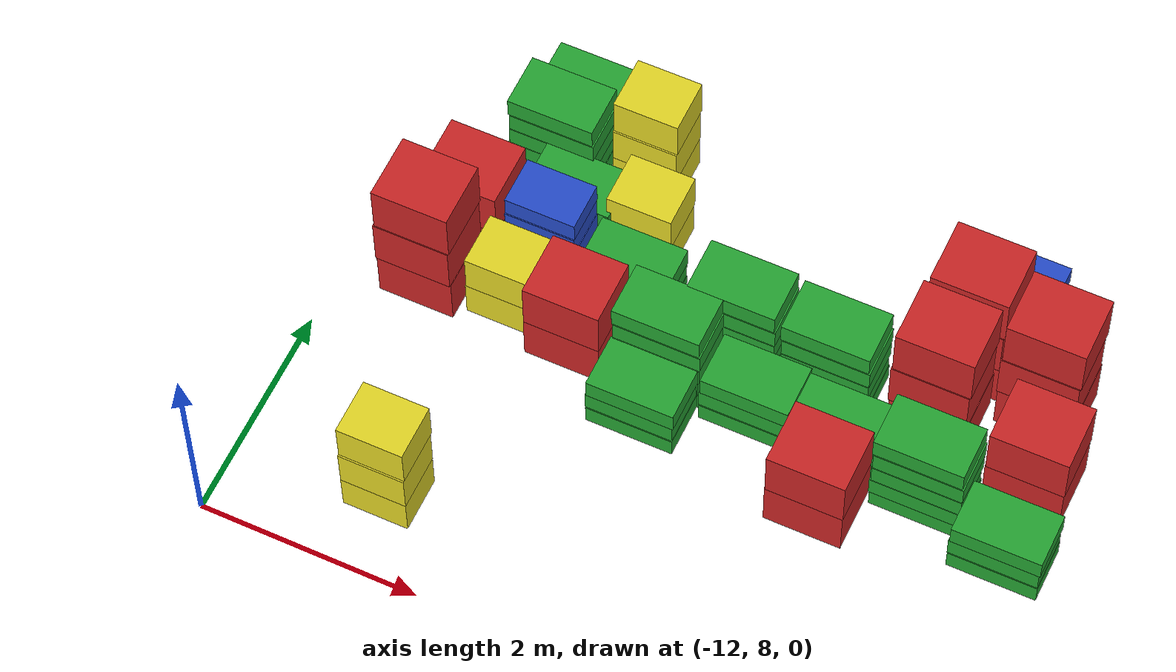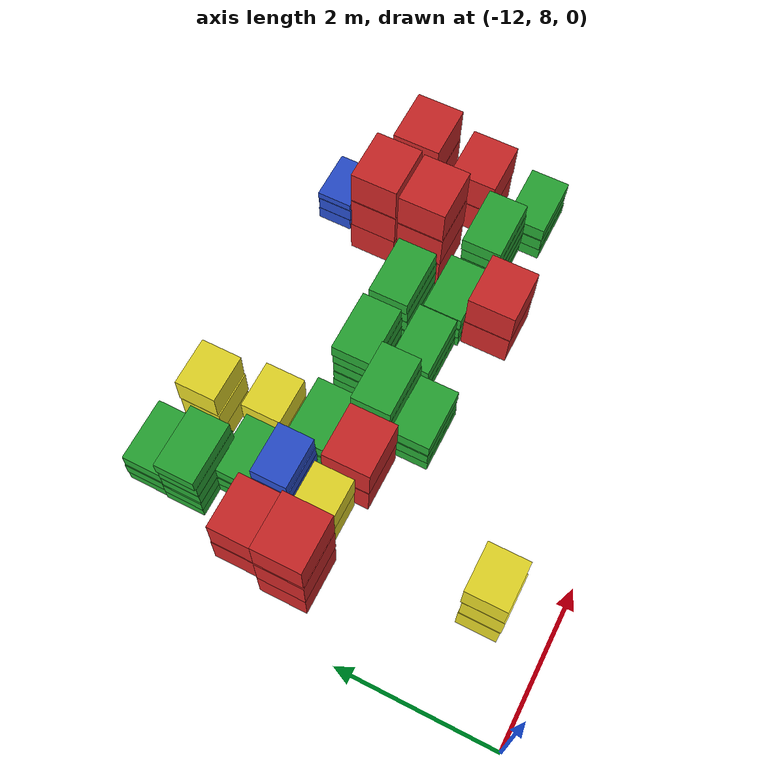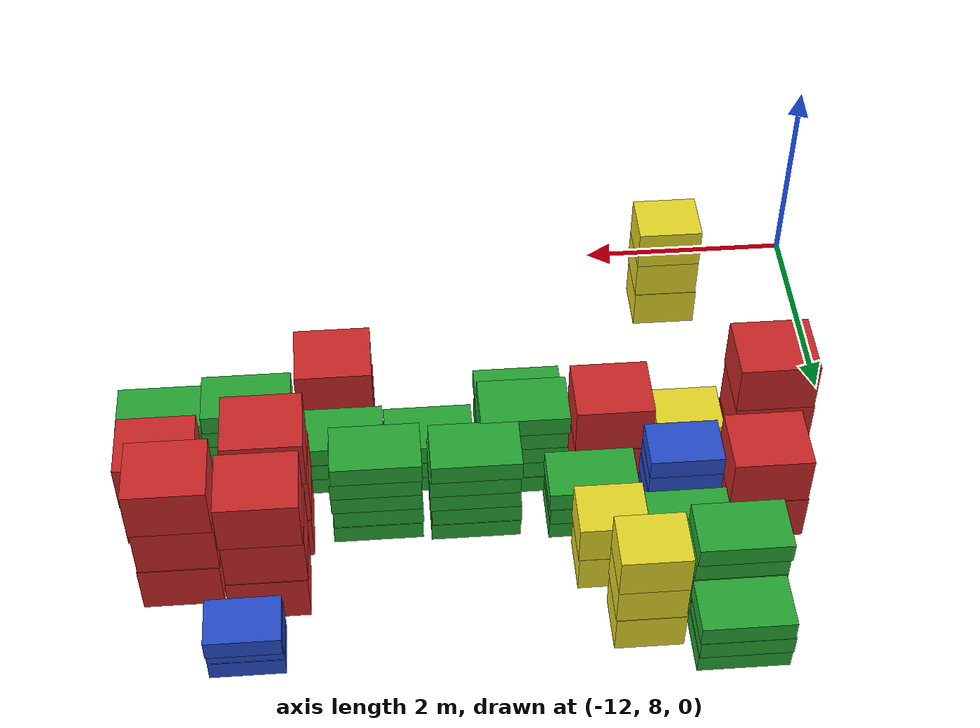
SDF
<sdf version="1.4">
 <model name="factory_baggage_group_B">
  <model name="baggage_C_x3_19">
   <model name="baggage_C_0">
    <static>1</static>
    <link name="link">
     <collision name="collision"><geometry><box><size>0.6 0.5 0.4</size></box></geometry></collision>
     <visual name="visual">
      <geometry><box><size>0.6 0.5 0.4</size></box></geometry>
      <material>
       <script><uri>file://media/materials/scripts/gazebo.material</uri><name>Gazebo/Yellow</name></script>
      </material>
     </visual>
    </link>
    <pose>0 0 0.2 0 -0 0</pose>
   </model>
   <model name="baggage_C_1">
    <static>1</static>
    <link name="link">
     <collision name="collision"><geometry><box><size>0.6 0.5 0.4</size></box></geometry></collision>
     <visual name="visual">
      <geometry><box><size>0.6 0.5 0.4</size></box></geometry>
      <material>
       <script><uri>file://media/materials/scripts/gazebo.material</uri><name>Gazebo/Yellow</name></script>
      </material>
     </visual>
    </link>
    <pose>0.0062 -0.0069 0.6 0 -0 0</pose>
   </model>
   <model name="baggage_C_2">
    <static>1</static>
    <link name="link">
     <collision name="collision"><geometry><box><size>0.6 0.5 0.4</size></box></geometry></collision>
     <visual name="visual">
      <geometry><box><size>0.6 0.5 0.4</size></box></geometry>
      <material>
       <script><uri>file://media/materials/scripts/gazebo.material</uri><name>Gazebo/Yellow</name></script>
      </material>
     </visual>
    </link>
    <pose>0.0089 0.0083 1 0 -0 0</pose>
   </model>
   <pose>-10.6422 8.77616 0 0 -0 0</pose>
  </model>
  <model name="baggage_A_x3_13">
   <model name="baggage_A_0">
    <static>1</static>
    <link name="link">
     <collision name="collision"><geometry><box><size>0.7 0.6 0.5</size></box></geometry></collision>
     <visual name="visual">
      <geometry><box><size>0.7 0.6 0.5</size></box></geometry>
      <material>
       <script><uri>file://media/materials/scripts/gazebo.material</uri><name>Gazebo/Red</name></script>
      </material>
     </visual>
    </link>
    <pose>0 0 0.25 0 -0 0</pose>
   </model>
   <model name="baggage_A_1">
    <static>1</static>
    <link name="link">
     <collision name="collision"><geometry><box><size>0.7 0.6 0.5</size></box></geometry></collision>
     <visual name="visual">
      <geometry><box><size>0.7 0.6 0.5</size></box></geometry>
      <material>
       <script><uri>file://media/materials/scripts/gazebo.material</uri><name>Gazebo/Red</name></script>
      </material>
     </visual>
    </link>
    <pose>-0.006 -0.0077 0.75 0 -0 0</pose>
   </model>
   <model name="baggage_A_2">
    <static>1</static>
    <link name="link">
     <collision name="collision"><geometry><box><size>0.7 0.6 0.5</size></box></geometry></collision>
     <visual name="visual">
      <geometry><box><size>0.7 0.6 0.5</size></box></geometry>
      <material>
       <script><uri>file://media/materials/scripts/gazebo.material</uri><name>Gazebo/Red</name></script>
      </material>
     </visual>
    </link>
    <pose>0.0045 0.0005 1.25 0 -0 0</pose>
   </model>
   <pose>-11.2629 10.8297 0 0 -0 0</pose>
  </model>
  <model name="baggage_A_x2_12">
   <model name="baggage_A_0">
    <static>1</static>
    <link name="link">
     <collision name="collision"><geometry><box><size>0.7 0.6 0.5</size></box></geometry></collision>
     <visual name="visual">
      <geometry><box><size>0.7 0.6 0.5</size></box></geometry>
      <material>
       <script><uri>file://media/materials/scripts/gazebo.material</uri><name>Gazebo/Red</name></script>
      </material>
     </visual>
    </link>
    <pose>0 0 0.25 0 -0 0</pose>
   </model>
   <model name="baggage_A_1">
    <static>1</static>
    <link name="link">
     <collision name="collision"><geometry><box><size>0.7 0.6 0.5</size></box></geometry></collision>
     <visual name="visual">
      <geometry><box><size>0.7 0.6 0.5</size></box></geometry>
      <material>
       <script><uri>file://media/materials/scripts/gazebo.material</uri><name>Gazebo/Red</name></script>
      </material>
     </visual>
    </link>
    <pose>0.0063 -0.0062 0.75 0 -0 0</pose>
   </model>
   <pose>-11.1491 11.4753 0 0 -0 0</pose>
  </model>
  <model name="baggage_C_x2_25">
   <model name="baggage_C_0">
    <static>1</static>
    <link name="link">
     <collision name="collision"><geometry><box><size>0.6 0.5 0.4</size></box></geometry></collision>
     <visual name="visual">
      <geometry><box><size>0.6 0.5 0.4</size></box></geometry>
      <material>
       <script><uri>file://media/materials/scripts/gazebo.material</uri><name>Gazebo/Yellow</name></script>
      </material>
     </visual>
    </link>
    <pose>0 0 0.2 0 -0 0</pose>
   </model>
   <model name="baggage_C_1">
    <static>1</static>
    <link name="link">
     <collision name="collision"><geometry><box><size>0.6 0.5 0.4</size></box></geometry></collision>
     <visual name="visual">
      <geometry><box><size>0.6 0.5 0.4</size></box></geometry>
      <material>
       <script><uri>file://media/materials/scripts/gazebo.material</uri><name>Gazebo/Yellow</name></script>
      </material>
     </visual>
    </link>
    <pose>0.0093 -0.002 0.6 0 -0 0</pose>
   </model>
   <pose>-10.5378 10.897 0 0 -0 0</pose>
  </model>
  <model name="baggage_B_x5_16">
   <model name="baggage_B_0">
    <static>1</static>
    <link name="link">
     <collision name="collision"><geometry><box><size>0.65 0.45 0.2</size></box></geometry></collision>
     <visual name="visual">
      <geometry><box><size>0.65 0.45 0.2</size></box></geometry>
      <material>
       <script><uri>file://media/materials/scripts/gazebo.material</uri><name>Gazebo/Blue</name></script>
      </material>
     </visual>
    </link>
    <pose>0 0 0.1 0 -0 0</pose>
   </model>
   <model name="baggage_B_1">
    <static>1</static>
    <link name="link">
     <collision name="collision"><geometry><box><size>0.65 0.45 0.2</size></box></geometry></collision>
     <visual name="visual">
      <geometry><box><size>0.65 0.45 0.2</size></box></geometry>
      <material>
       <script><uri>file://media/materials/scripts/gazebo.material</uri><name>Gazebo/Blue</name></script>
      </material>
     </visual>
    </link>
    <pose>-0.0014 -0.0091 0.3 0 -0 0</pose>
   </model>
   <model name="baggage_B_2">
    <static>1</static>
    <link name="link">
     <collision name="collision"><geometry><box><size>0.65 0.45 0.2</size></box></geometry></collision>
     <visual name="visual">
      <geometry><box><size>0.65 0.45 0.2</size></box></geometry>
      <material>
       <script><uri>file://media/materials/scripts/gazebo.material</uri><name>Gazebo/Blue</name></script>
      </material>
     </visual>
    </link>
    <pose>0.0076 -0.0066 0.5 0 -0 0</pose>
   </model>
   <model name="baggage_B_3">
    <static>1</static>
    <link name="link">
     <collision name="collision"><geometry><box><size>0.65 0.45 0.2</size></box></geometry></collision>
     <visual name="visual">
      <geometry><box><size>0.65 0.45 0.2</size></box></geometry>
      <material>
       <script><uri>file://media/materials/scripts/gazebo.material</uri><name>Gazebo/Blue</name></script>
      </material>
     </visual>
    </link>
    <pose>0 -0.0032 0.7 0 -0 0</pose>
   </model>
   <model name="baggage_B_4">
    <static>1</static>
    <link name="link">
     <collision name="collision"><geometry><box><size>0.65 0.45 0.2</size></box></geometry></collision>
     <visual name="visual">
      <geometry><box><size>0.65 0.45 0.2</size></box></geometry>
      <material>
       <script><uri>file://media/materials/scripts/gazebo.material</uri><name>Gazebo/Blue</name></script>
      </material>
     </visual>
    </link>
    <pose>0.0023 0.0073 0.9 0 -0 0</pose>
   </model>
   <pose>-10.4028 11.4394 0 0 -0 0</pose>
  </model>
  <model name="baggage_A_x2_13">
   <model name="baggage_A_0">
    <static>1</static>
    <link name="link">
     <collision name="collision"><geometry><box><size>0.7 0.6 0.5</size></box></geometry></collision>
     <visual name="visual">
      <geometry><box><size>0.7 0.6 0.5</size></box></geometry>
      <material>
       <script><uri>file://media/materials/scripts/gazebo.material</uri><name>Gazebo/Red</name></script>
      </material>
     </visual>
    </link>
    <pose>0 0 0.25 0 -0 0</pose>
   </model>
   <model name="baggage_A_1">
    <static>1</static>
    <link name="link">
     <collision name="collision"><geometry><box><size>0.7 0.6 0.5</size></box></geometry></collision>
     <visual name="visual">
      <geometry><box><size>0.7 0.6 0.5</size></box></geometry>
      <material>
       <script><uri>file://media/materials/scripts/gazebo.material</uri><name>Gazebo/Red</name></script>
      </material>
     </visual>
    </link>
    <pose>0.0063 -0.0062 0.75 0 -0 0</pose>
   </model>
   <pose>-9.85833 10.7808 0 0 -0 0</pose>
  </model>
  <model name="baggage_D_x3_10">
   <model name="baggage_D_0">
    <static>1</static>
    <link name="link">
     <collision name="collision"><geometry><box><size>0.8 0.5 0.2</size></box></geometry></collision>
     <visual name="visual">
      <geometry><box><size>0.8 0.5 0.2</size></box></geometry>
      <material>
       <script><uri>file://media/materials/scripts/gazebo.material</uri><name>Gazebo/Green</name></script>
      </material>
     </visual>
    </link>
    <pose>0 0 0.1 0 -0 0</pose>
   </model>
   <model name="baggage_D_1">
    <static>1</static>
    <link name="link">
     <collision name="collision"><geometry><box><size>0.8 0.5 0.2</size></box></geometry></collision>
     <visual name="visual">
      <geometry><box><size>0.8 0.5 0.2</size></box></geometry>
      <material>
       <script><uri>file://media/materials/scripts/gazebo.material</uri><name>Gazebo/Green</name></script>
      </material>
     </visual>
    </link>
    <pose>-0.0056 0.0083 0.3 0 -0 0</pose>
   </model>
   <model name="baggage_D_2">
    <static>1</static>
    <link name="link">
     <collision name="collision"><geometry><box><size>0.8 0.5 0.2</size></box></geometry></collision>
     <visual name="visual">
      <geometry><box><size>0.8 0.5 0.2</size></box></geometry>
      <material>
       <script><uri>file://media/materials/scripts/gazebo.material</uri><name>Gazebo/Green</name></script>
      </material>
     </visual>
    </link>
    <pose>0.0053 0.0057 0.5 0 -0 0</pose>
   </model>
   <pose>-9.61937 11.3897 0 0 -0 0</pose>
  </model>
  <model name="baggage_D_x5_10">
   <model name="baggage_D_0">
    <static>1</static>
    <link name="link">
     <collision name="collision"><geometry><box><size>0.8 0.5 0.2</size></box></geometry></collision>
     <visual name="visual">
      <geometry><box><size>0.8 0.5 0.2</size></box></geometry>
      <material>
       <script><uri>file://media/materials/scripts/gazebo.material</uri><name>Gazebo/Green</name></script>
      </material>
     </visual>
    </link>
    <pose>0 0 0.1 0 -0 0</pose>
   </model>
   <model name="baggage_D_1">
    <static>1</static>
    <link name="link">
     <collision name="collision"><geometry><box><size>0.8 0.5 0.2</size></box></geometry></collision>
     <visual name="visual">
      <geometry><box><size>0.8 0.5 0.2</size></box></geometry>
      <material>
       <script><uri>file://media/materials/scripts/gazebo.material</uri><name>Gazebo/Green</name></script>
      </material>
     </visual>
    </link>
    <pose>-0.0065 -0.0092 0.3 0 -0 0</pose>
   </model>
   <model name="baggage_D_2">
    <static>1</static>
    <link name="link">
     <collision name="collision"><geometry><box><size>0.8 0.5 0.2</size></box></geometry></collision>
     <visual name="visual">
      <geometry><box><size>0.8 0.5 0.2</size></box></geometry>
      <material>
       <script><uri>file://media/materials/scripts/gazebo.material</uri><name>Gazebo/Green</name></script>
      </material>
     </visual>
    </link>
    <pose>0.005 -0.0052 0.5 0 -0 0</pose>
   </model>
   <model name="baggage_D_3">
    <static>1</static>
    <link name="link">
     <collision name="collision"><geometry><box><size>0.8 0.5 0.2</size></box></geometry></collision>
     <visual name="visual">
      <geometry><box><size>0.8 0.5 0.2</size></box></geometry>
      <material>
       <script><uri>file://media/materials/scripts/gazebo.material</uri><name>Gazebo/Green</name></script>
      </material>
     </visual>
    </link>
    <pose>0.0074 0.0002 0.7 0 -0 0</pose>
   </model>
   <model name="baggage_D_4">
    <static>1</static>
    <link name="link">
     <collision name="collision"><geometry><box><size>0.8 0.5 0.2</size></box></geometry></collision>
     <visual name="visual">
      <geometry><box><size>0.8 0.5 0.2</size></box></geometry>
      <material>
       <script><uri>file://media/materials/scripts/gazebo.material</uri><name>Gazebo/Green</name></script>
      </material>
     </visual>
    </link>
    <pose>-0.006 0.0081 0.9 0 -0 0</pose>
   </model>
   <pose>-9.03759 10.8483 0 0 -0 0</pose>
  </model>
  <model name="baggage_D_x3_11">
   <model name="baggage_D_0">
    <static>1</static>
    <link name="link">
     <collision name="collision"><geometry><box><size>0.8 0.5 0.2</size></box></geometry></collision>
     <visual name="visual">
      <geometry><box><size>0.8 0.5 0.2</size></box></geometry>
      <material>
       <script><uri>file://media/materials/scripts/gazebo.material</uri><name>Gazebo/Green</name></script>
      </material>
     </visual>
    </link>
    <pose>0 0 0.1 0 -0 0</pose>
   </model>
   <model name="baggage_D_1">
    <static>1</static>
    <link name="link">
     <collision name="collision"><geometry><box><size>0.8 0.5 0.2</size></box></geometry></collision>
     <visual name="visual">
      <geometry><box><size>0.8 0.5 0.2</size></box></geometry>
      <material>
       <script><uri>file://media/materials/scripts/gazebo.material</uri><name>Gazebo/Green</name></script>
      </material>
     </visual>
    </link>
    <pose>-0.0056 0.0083 0.3 0 -0 0</pose>
   </model>
   <model name="baggage_D_2">
    <static>1</static>
    <link name="link">
     <collision name="collision"><geometry><box><size>0.8 0.5 0.2</size></box></geometry></collision>
     <visual name="visual">
      <geometry><box><size>0.8 0.5 0.2</size></box></geometry>
      <material>
       <script><uri>file://media/materials/scripts/gazebo.material</uri><name>Gazebo/Green</name></script>
      </material>
     </visual>
    </link>
    <pose>0.0053 0.0057 0.5 0 -0 0</pose>
   </model>
   <pose>-9.05099 10.3453 0 0 -0 0</pose>
  </model>
  <model name="baggage_D_x5_11">
   <model name="baggage_D_0">
    <static>1</static>
    <link name="link">
     <collision name="collision"><geometry><box><size>0.8 0.5 0.2</size></box></geometry></collision>
     <visual name="visual">
      <geometry><box><size>0.8 0.5 0.2</size></box></geometry>
      <material>
       <script><uri>file://media/materials/scripts/gazebo.material</uri><name>Gazebo/Green</name></script>
      </material>
     </visual>
    </link>
    <pose>0 0 0.1 0 -0 0</pose>
   </model>
   <model name="baggage_D_1">
    <static>1</static>
    <link name="link">
     <collision name="collision"><geometry><box><size>0.8 0.5 0.2</size></box></geometry></collision>
     <visual name="visual">
      <geometry><box><size>0.8 0.5 0.2</size></box></geometry>
      <material>
       <script><uri>file://media/materials/scripts/gazebo.material</uri><name>Gazebo/Green</name></script>
      </material>
     </visual>
    </link>
    <pose>-0.0065 -0.0092 0.3 0 -0 0</pose>
   </model>
   <model name="baggage_D_2">
    <static>1</static>
    <link name="link">
     <collision name="collision"><geometry><box><size>0.8 0.5 0.2</size></box></geometry></collision>
     <visual name="visual">
      <geometry><box><size>0.8 0.5 0.2</size></box></geometry>
      <material>
       <script><uri>file://media/materials/scripts/gazebo.material</uri><name>Gazebo/Green</name></script>
      </material>
     </visual>
    </link>
    <pose>0.005 -0.0052 0.5 0 -0 0</pose>
   </model>
   <model name="baggage_D_3">
    <static>1</static>
    <link name="link">
     <collision name="collision"><geometry><box><size>0.8 0.5 0.2</size></box></geometry></collision>
     <visual name="visual">
      <geometry><box><size>0.8 0.5 0.2</size></box></geometry>
      <material>
       <script><uri>file://media/materials/scripts/gazebo.material</uri><name>Gazebo/Green</name></script>
      </material>
     </visual>
    </link>
    <pose>0.0074 0.0002 0.7 0 -0 0</pose>
   </model>
   <model name="baggage_D_4">
    <static>1</static>
    <link name="link">
     <collision name="collision"><geometry><box><size>0.8 0.5 0.2</size></box></geometry></collision>
     <visual name="visual">
      <geometry><box><size>0.8 0.5 0.2</size></box></geometry>
      <material>
       <script><uri>file://media/materials/scripts/gazebo.material</uri><name>Gazebo/Green</name></script>
      </material>
     </visual>
    </link>
    <pose>-0.006 0.0081 0.9 0 -0 0</pose>
   </model>
   <pose>-8.56957 11.334 0 0 -0 0</pose>
  </model>
  <model name="baggage_D_x5_12">
   <model name="baggage_D_0">
    <static>1</static>
    <link name="link">
     <collision name="collision"><geometry><box><size>0.8 0.5 0.2</size></box></geometry></collision>
     <visual name="visual">
      <geometry><box><size>0.8 0.5 0.2</size></box></geometry>
      <material>
       <script><uri>file://media/materials/scripts/gazebo.material</uri><name>Gazebo/Green</name></script>
      </material>
     </visual>
    </link>
    <pose>0 0 0.1 0 -0 0</pose>
   </model>
   <model name="baggage_D_1">
    <static>1</static>
    <link name="link">
     <collision name="collision"><geometry><box><size>0.8 0.5 0.2</size></box></geometry></collision>
     <visual name="visual">
      <geometry><box><size>0.8 0.5 0.2</size></box></geometry>
      <material>
       <script><uri>file://media/materials/scripts/gazebo.material</uri><name>Gazebo/Green</name></script>
      </material>
     </visual>
    </link>
    <pose>-0.0065 -0.0092 0.3 0 -0 0</pose>
   </model>
   <model name="baggage_D_2">
    <static>1</static>
    <link name="link">
     <collision name="collision"><geometry><box><size>0.8 0.5 0.2</size></box></geometry></collision>
     <visual name="visual">
      <geometry><box><size>0.8 0.5 0.2</size></box></geometry>
      <material>
       <script><uri>file://media/materials/scripts/gazebo.material</uri><name>Gazebo/Green</name></script>
      </material>
     </visual>
    </link>
    <pose>0.005 -0.0052 0.5 0 -0 0</pose>
   </model>
   <model name="baggage_D_3">
    <static>1</static>
    <link name="link">
     <collision name="collision"><geometry><box><size>0.8 0.5 0.2</size></box></geometry></collision>
     <visual name="visual">
      <geometry><box><size>0.8 0.5 0.2</size></box></geometry>
      <material>
       <script><uri>file://media/materials/scripts/gazebo.material</uri><name>Gazebo/Green</name></script>
      </material>
     </visual>
    </link>
    <pose>0.0074 0.0002 0.7 0 -0 0</pose>
   </model>
   <model name="baggage_D_4">
    <static>1</static>
    <link name="link">
     <collision name="collision"><geometry><box><size>0.8 0.5 0.2</size></box></geometry></collision>
     <visual name="visual">
      <geometry><box><size>0.8 0.5 0.2</size></box></geometry>
      <material>
       <script><uri>file://media/materials/scripts/gazebo.material</uri><name>Gazebo/Green</name></script>
      </material>
     </visual>
    </link>
    <pose>-0.006 0.0081 0.9 0 -0 0</pose>
   </model>
   <pose>-7.69601 11.2985 0 0 -0 0</pose>
  </model>
  <model name="baggage_D_x3_12">
   <model name="baggage_D_0">
    <static>1</static>
    <link name="link">
     <collision name="collision"><geometry><box><size>0.8 0.5 0.2</size></box></geometry></collision>
     <visual name="visual">
      <geometry><box><size>0.8 0.5 0.2</size></box></geometry>
      <material>
       <script><uri>file://media/materials/scripts/gazebo.material</uri><name>Gazebo/Green</name></script>
      </material>
     </visual>
    </link>
    <pose>0 0 0.1 0 -0 0</pose>
   </model>
   <model name="baggage_D_1">
    <static>1</static>
    <link name="link">
     <collision name="collision"><geometry><box><size>0.8 0.5 0.2</size></box></geometry></collision>
     <visual name="visual">
      <geometry><box><size>0.8 0.5 0.2</size></box></geometry>
      <material>
       <script><uri>file://media/materials/scripts/gazebo.material</uri><name>Gazebo/Green</name></script>
      </material>
     </visual>
    </link>
    <pose>-0.0056 0.0083 0.3 0 -0 0</pose>
   </model>
   <model name="baggage_D_2">
    <static>1</static>
    <link name="link">
     <collision name="collision"><geometry><box><size>0.8 0.5 0.2</size></box></geometry></collision>
     <visual name="visual">
      <geometry><box><size>0.8 0.5 0.2</size></box></geometry>
      <material>
       <script><uri>file://media/materials/scripts/gazebo.material</uri><name>Gazebo/Green</name></script>
      </material>
     </visual>
    </link>
    <pose>0.0053 0.0057 0.5 0 -0 0</pose>
   </model>
   <pose>-8.19713 10.7661 0 0 -0 0</pose>
  </model>
  <model name="baggage_D_x3_13">
   <model name="baggage_D_0">
    <static>1</static>
    <link name="link">
     <collision name="collision"><geometry><box><size>0.8 0.5 0.2</size></box></geometry></collision>
     <visual name="visual">
      <geometry><box><size>0.8 0.5 0.2</size></box></geometry>
      <material>
       <script><uri>file://media/materials/scripts/gazebo.material</uri><name>Gazebo/Green</name></script>
      </material>
     </visual>
    </link>
    <pose>0 0 0.1 0 -0 0</pose>
   </model>
   <model name="baggage_D_1">
    <static>1</static>
    <link name="link">
     <collision name="collision"><geometry><box><size>0.8 0.5 0.2</size></box></geometry></collision>
     <visual name="visual">
      <geometry><box><size>0.8 0.5 0.2</size></box></geometry>
      <material>
       <script><uri>file://media/materials/scripts/gazebo.material</uri><name>Gazebo/Green</name></script>
      </material>
     </visual>
    </link>
    <pose>-0.0056 0.0083 0.3 0 -0 0</pose>
   </model>
   <model name="baggage_D_2">
    <static>1</static>
    <link name="link">
     <collision name="collision"><geometry><box><size>0.8 0.5 0.2</size></box></geometry></collision>
     <visual name="visual">
      <geometry><box><size>0.8 0.5 0.2</size></box></geometry>
      <material>
       <script><uri>file://media/materials/scripts/gazebo.material</uri><name>Gazebo/Green</name></script>
      </material>
     </visual>
    </link>
    <pose>0.0053 0.0057 0.5 0 -0 0</pose>
   </model>
   <pose>-7.38778 10.7233 0 0 -0 0</pose>
  </model>
  <model name="baggage_D_x5_13">
   <model name="baggage_D_0">
    <static>1</static>
    <link name="link">
     <collision name="collision"><geometry><box><size>0.8 0.5 0.2</size></box></geometry></collision>
     <visual name="visual">
      <geometry><box><size>0.8 0.5 0.2</size></box></geometry>
      <material>
       <script><uri>file://media/materials/scripts/gazebo.material</uri><name>Gazebo/Green</name></script>
      </material>
     </visual>
    </link>
    <pose>0 0 0.1 0 -0 0</pose>
   </model>
   <model name="baggage_D_1">
    <static>1</static>
    <link name="link">
     <collision name="collision"><geometry><box><size>0.8 0.5 0.2</size></box></geometry></collision>
     <visual name="visual">
      <geometry><box><size>0.8 0.5 0.2</size></box></geometry>
      <material>
       <script><uri>file://media/materials/scripts/gazebo.material</uri><name>Gazebo/Green</name></script>
      </material>
     </visual>
    </link>
    <pose>-0.0065 -0.0092 0.3 0 -0 0</pose>
   </model>
   <model name="baggage_D_2">
    <static>1</static>
    <link name="link">
     <collision name="collision"><geometry><box><size>0.8 0.5 0.2</size></box></geometry></collision>
     <visual name="visual">
      <geometry><box><size>0.8 0.5 0.2</size></box></geometry>
      <material>
       <script><uri>file://media/materials/scripts/gazebo.material</uri><name>Gazebo/Green</name></script>
      </material>
     </visual>
    </link>
    <pose>0.005 -0.0052 0.5 0 -0 0</pose>
   </model>
   <model name="baggage_D_3">
    <static>1</static>
    <link name="link">
     <collision name="collision"><geometry><box><size>0.8 0.5 0.2</size></box></geometry></collision>
     <visual name="visual">
      <geometry><box><size>0.8 0.5 0.2</size></box></geometry>
      <material>
       <script><uri>file://media/materials/scripts/gazebo.material</uri><name>Gazebo/Green</name></script>
      </material>
     </visual>
    </link>
    <pose>0.0074 0.0002 0.7 0 -0 0</pose>
   </model>
   <model name="baggage_D_4">
    <static>1</static>
    <link name="link">
     <collision name="collision"><geometry><box><size>0.8 0.5 0.2</size></box></geometry></collision>
     <visual name="visual">
      <geometry><box><size>0.8 0.5 0.2</size></box></geometry>
      <material>
       <script><uri>file://media/materials/scripts/gazebo.material</uri><name>Gazebo/Green</name></script>
      </material>
     </visual>
    </link>
    <pose>-0.006 0.0081 0.9 0 -0 0</pose>
   </model>
   <pose>-6.57089 10.6133 0 0 -0 0</pose>
  </model>
  <model name="baggage_A_x2_14">
   <model name="baggage_A_0">
    <static>1</static>
    <link name="link">
     <collision name="collision"><geometry><box><size>0.7 0.6 0.5</size></box></geometry></collision>
     <visual name="visual">
      <geometry><box><size>0.7 0.6 0.5</size></box></geometry>
      <material>
       <script><uri>file://media/materials/scripts/gazebo.material</uri><name>Gazebo/Red</name></script>
      </material>
     </visual>
    </link>
    <pose>0 0 0.25 0 -0 0</pose>
   </model>
   <model name="baggage_A_1">
    <static>1</static>
    <link name="link">
     <collision name="collision"><geometry><box><size>0.7 0.6 0.5</size></box></geometry></collision>
     <visual name="visual">
      <geometry><box><size>0.7 0.6 0.5</size></box></geometry>
      <material>
       <script><uri>file://media/materials/scripts/gazebo.material</uri><name>Gazebo/Red</name></script>
      </material>
     </visual>
    </link>
    <pose>0.0063 -0.0062 0.75 0 -0 0</pose>
   </model>
   <pose>-7.36037 10.1652 0 0 -0 0</pose>
  </model>
  <model name="baggage_D_x3_14">
   <model name="baggage_D_0">
    <static>1</static>
    <link name="link">
     <collision name="collision"><geometry><box><size>0.8 0.5 0.2</size></box></geometry></collision>
     <visual name="visual">
      <geometry><box><size>0.8 0.5 0.2</size></box></geometry>
      <material>
       <script><uri>file://media/materials/scripts/gazebo.material</uri><name>Gazebo/Green</name></script>
      </material>
     </visual>
    </link>
    <pose>0 0 0.1 0 -0 0</pose>
   </model>
   <model name="baggage_D_1">
    <static>1</static>
    <link name="link">
     <collision name="collision"><geometry><box><size>0.8 0.5 0.2</size></box></geometry></collision>
     <visual name="visual">
      <geometry><box><size>0.8 0.5 0.2</size></box></geometry>
      <material>
       <script><uri>file://media/materials/scripts/gazebo.material</uri><name>Gazebo/Green</name></script>
      </material>
     </visual>
    </link>
    <pose>-0.0056 0.0083 0.3 0 -0 0</pose>
   </model>
   <model name="baggage_D_2">
    <static>1</static>
    <link name="link">
     <collision name="collision"><geometry><box><size>0.8 0.5 0.2</size></box></geometry></collision>
     <visual name="visual">
      <geometry><box><size>0.8 0.5 0.2</size></box></geometry>
      <material>
       <script><uri>file://media/materials/scripts/gazebo.material</uri><name>Gazebo/Green</name></script>
      </material>
     </visual>
    </link>
    <pose>0.0053 0.0057 0.5 0 -0 0</pose>
   </model>
   <pose>-5.75961 10.3463 0 0 -0 0</pose>
  </model>
  <model name="baggage_D_x3_38">
   <model name="baggage_D_0">
    <static>1</static>
    <link name="link">
     <collision name="collision"><geometry><box><size>0.8 0.5 0.2</size></box></geometry></collision>
     <visual name="visual">
      <geometry><box><size>0.8 0.5 0.2</size></box></geometry>
      <material>
       <script><uri>file://media/materials/scripts/gazebo.material</uri><name>Gazebo/Green</name></script>
      </material>
     </visual>
    </link>
    <pose>0 0 0.1 0 -0 0</pose>
   </model>
   <model name="baggage_D_1">
    <static>1</static>
    <link name="link">
     <collision name="collision"><geometry><box><size>0.8 0.5 0.2</size></box></geometry></collision>
     <visual name="visual">
      <geometry><box><size>0.8 0.5 0.2</size></box></geometry>
      <material>
       <script><uri>file://media/materials/scripts/gazebo.material</uri><name>Gazebo/Green</name></script>
      </material>
     </visual>
    </link>
    <pose>-0.0056 0.0083 0.3 0 -0 0</pose>
   </model>
   <model name="baggage_D_2">
    <static>1</static>
    <link name="link">
     <collision name="collision"><geometry><box><size>0.8 0.5 0.2</size></box></geometry></collision>
     <visual name="visual">
      <geometry><box><size>0.8 0.5 0.2</size></box></geometry>
      <material>
       <script><uri>file://media/materials/scripts/gazebo.material</uri><name>Gazebo/Green</name></script>
      </material>
     </visual>
    </link>
    <pose>0.0053 0.0057 0.5 0 -0 0</pose>
   </model>
   <pose>-10.7241 12.8847 0 0 -0 0</pose>
  </model>
  <model name="baggage_D_x5_19">
   <model name="baggage_D_0">
    <static>1</static>
    <link name="link">
     <collision name="collision"><geometry><box><size>0.8 0.5 0.2</size></box></geometry></collision>
     <visual name="visual">
      <geometry><box><size>0.8 0.5 0.2</size></box></geometry>
      <material>
       <script><uri>file://media/materials/scripts/gazebo.material</uri><name>Gazebo/Green</name></script>
      </material>
     </visual>
    </link>
    <pose>0 0 0.1 0 -0 0</pose>
   </model>
   <model name="baggage_D_1">
    <static>1</static>
    <link name="link">
     <collision name="collision"><geometry><box><size>0.8 0.5 0.2</size></box></geometry></collision>
     <visual name="visual">
      <geometry><box><size>0.8 0.5 0.2</size></box></geometry>
      <material>
       <script><uri>file://media/materials/scripts/gazebo.material</uri><name>Gazebo/Green</name></script>
      </material>
     </visual>
    </link>
    <pose>-0.0065 -0.0092 0.3 0 -0 0</pose>
   </model>
   <model name="baggage_D_2">
    <static>1</static>
    <link name="link">
     <collision name="collision"><geometry><box><size>0.8 0.5 0.2</size></box></geometry></collision>
     <visual name="visual">
      <geometry><box><size>0.8 0.5 0.2</size></box></geometry>
      <material>
       <script><uri>file://media/materials/scripts/gazebo.material</uri><name>Gazebo/Green</name></script>
      </material>
     </visual>
    </link>
    <pose>0.005 -0.0052 0.5 0 -0 0</pose>
   </model>
   <model name="baggage_D_3">
    <static>1</static>
    <link name="link">
     <collision name="collision"><geometry><box><size>0.8 0.5 0.2</size></box></geometry></collision>
     <visual name="visual">
      <geometry><box><size>0.8 0.5 0.2</size></box></geometry>
      <material>
       <script><uri>file://media/materials/scripts/gazebo.material</uri><name>Gazebo/Green</name></script>
      </material>
     </visual>
    </link>
    <pose>0.0074 0.0002 0.7 0 -0 0</pose>
   </model>
   <model name="baggage_D_4">
    <static>1</static>
    <link name="link">
     <collision name="collision"><geometry><box><size>0.8 0.5 0.2</size></box></geometry></collision>
     <visual name="visual">
      <geometry><box><size>0.8 0.5 0.2</size></box></geometry>
      <material>
       <script><uri>file://media/materials/scripts/gazebo.material</uri><name>Gazebo/Green</name></script>
      </material>
     </visual>
    </link>
    <pose>-0.006 0.0081 0.9 0 -0 0</pose>
   </model>
   <pose>-10.739 12.3817 0 0 -0 0</pose>
  </model>
  <model name="baggage_D_x3_39">
   <model name="baggage_D_0">
    <static>1</static>
    <link name="link">
     <collision name="collision"><geometry><box><size>0.8 0.5 0.2</size></box></geometry></collision>
     <visual name="visual">
      <geometry><box><size>0.8 0.5 0.2</size></box></geometry>
      <material>
       <script><uri>file://media/materials/scripts/gazebo.material</uri><name>Gazebo/Green</name></script>
      </material>
     </visual>
    </link>
    <pose>0 0 0.1 0 -0 0</pose>
   </model>
   <model name="baggage_D_1">
    <static>1</static>
    <link name="link">
     <collision name="collision"><geometry><box><size>0.8 0.5 0.2</size></box></geometry></collision>
     <visual name="visual">
      <geometry><box><size>0.8 0.5 0.2</size></box></geometry>
      <material>
       <script><uri>file://media/materials/scripts/gazebo.material</uri><name>Gazebo/Green</name></script>
      </material>
     </visual>
    </link>
    <pose>-0.0056 0.0083 0.3 0 -0 0</pose>
   </model>
   <model name="baggage_D_2">
    <static>1</static>
    <link name="link">
     <collision name="collision"><geometry><box><size>0.8 0.5 0.2</size></box></geometry></collision>
     <visual name="visual">
      <geometry><box><size>0.8 0.5 0.2</size></box></geometry>
      <material>
       <script><uri>file://media/materials/scripts/gazebo.material</uri><name>Gazebo/Green</name></script>
      </material>
     </visual>
    </link>
    <pose>0.0053 0.0057 0.5 0 -0 0</pose>
   </model>
   <pose>-10.3756 11.902 0 0 -0 0</pose>
  </model>
  <model name="baggage_A_x2_32">
   <model name="baggage_A_0">
    <static>1</static>
    <link name="link">
     <collision name="collision"><geometry><box><size>0.7 0.6 0.5</size></box></geometry></collision>
     <visual name="visual">
      <geometry><box><size>0.7 0.6 0.5</size></box></geometry>
      <material>
       <script><uri>file://media/materials/scripts/gazebo.material</uri><name>Gazebo/Red</name></script>
      </material>
     </visual>
    </link>
    <pose>0 0 0.25 0 -0 0</pose>
   </model>
   <model name="baggage_A_1">
    <static>1</static>
    <link name="link">
     <collision name="collision"><geometry><box><size>0.7 0.6 0.5</size></box></geometry></collision>
     <visual name="visual">
      <geometry><box><size>0.7 0.6 0.5</size></box></geometry>
      <material>
       <script><uri>file://media/materials/scripts/gazebo.material</uri><name>Gazebo/Red</name></script>
      </material>
     </visual>
    </link>
    <pose>0.0063 -0.0062 0.75 0 -0 0</pose>
   </model>
   <pose>-5.79576 11.126 0 0 -0 0</pose>
  </model>
  <model name="baggage_A_x3_29">
   <model name="baggage_A_0">
    <static>1</static>
    <link name="link">
     <collision name="collision"><geometry><box><size>0.7 0.6 0.5</size></box></geometry></collision>
     <visual name="visual">
      <geometry><box><size>0.7 0.6 0.5</size></box></geometry>
      <material>
       <script><uri>file://media/materials/scripts/gazebo.material</uri><name>Gazebo/Red</name></script>
      </material>
     </visual>
    </link>
    <pose>0 0 0.25 0 -0 0</pose>
   </model>
   <model name="baggage_A_1">
    <static>1</static>
    <link name="link">
     <collision name="collision"><geometry><box><size>0.7 0.6 0.5</size></box></geometry></collision>
     <visual name="visual">
      <geometry><box><size>0.7 0.6 0.5</size></box></geometry>
      <material>
       <script><uri>file://media/materials/scripts/gazebo.material</uri><name>Gazebo/Red</name></script>
      </material>
     </visual>
    </link>
    <pose>-0.006 -0.0077 0.75 0 -0 0</pose>
   </model>
   <model name="baggage_A_2">
    <static>1</static>
    <link name="link">
     <collision name="collision"><geometry><box><size>0.7 0.6 0.5</size></box></geometry></collision>
     <visual name="visual">
      <geometry><box><size>0.7 0.6 0.5</size></box></geometry>
      <material>
       <script><uri>file://media/materials/scripts/gazebo.material</uri><name>Gazebo/Red</name></script>
      </material>
     </visual>
    </link>
    <pose>0.0045 0.0005 1.25 0 -0 0</pose>
   </model>
   <pose>-6.76523 11.3758 0 0 -0 0</pose>
  </model>
  <model name="baggage_A_x3_30">
   <model name="baggage_A_0">
    <static>1</static>
    <link name="link">
     <collision name="collision"><geometry><box><size>0.7 0.6 0.5</size></box></geometry></collision>
     <visual name="visual">
      <geometry><box><size>0.7 0.6 0.5</size></box></geometry>
      <material>
       <script><uri>file://media/materials/scripts/gazebo.material</uri><name>Gazebo/Red</name></script>
      </material>
     </visual>
    </link>
    <pose>0 0 0.25 0 -0 0</pose>
   </model>
   <model name="baggage_A_1">
    <static>1</static>
    <link name="link">
     <collision name="collision"><geometry><box><size>0.7 0.6 0.5</size></box></geometry></collision>
     <visual name="visual">
      <geometry><box><size>0.7 0.6 0.5</size></box></geometry>
      <material>
       <script><uri>file://media/materials/scripts/gazebo.material</uri><name>Gazebo/Red</name></script>
      </material>
     </visual>
    </link>
    <pose>-0.006 -0.0077 0.75 0 -0 0</pose>
   </model>
   <model name="baggage_A_2">
    <static>1</static>
    <link name="link">
     <collision name="collision"><geometry><box><size>0.7 0.6 0.5</size></box></geometry></collision>
     <visual name="visual">
      <geometry><box><size>0.7 0.6 0.5</size></box></geometry>
      <material>
       <script><uri>file://media/materials/scripts/gazebo.material</uri><name>Gazebo/Red</name></script>
      </material>
     </visual>
    </link>
    <pose>0.0045 0.0005 1.25 0 -0 0</pose>
   </model>
   <pose>-5.97688 11.8333 0 0 -0 0</pose>
  </model>
  <model name="baggage_A_x3_31">
   <model name="baggage_A_0">
    <static>1</static>
    <link name="link">
     <collision name="collision"><geometry><box><size>0.7 0.6 0.5</size></box></geometry></collision>
     <visual name="visual">
      <geometry><box><size>0.7 0.6 0.5</size></box></geometry>
      <material>
       <script><uri>file://media/materials/scripts/gazebo.material</uri><name>Gazebo/Red</name></script>
      </material>
     </visual>
    </link>
    <pose>0 0 0.25 0 -0 0</pose>
   </model>
   <model name="baggage_A_1">
    <static>1</static>
    <link name="link">
     <collision name="collision"><geometry><box><size>0.7 0.6 0.5</size></box></geometry></collision>
     <visual name="visual">
      <geometry><box><size>0.7 0.6 0.5</size></box></geometry>
      <material>
       <script><uri>file://media/materials/scripts/gazebo.material</uri><name>Gazebo/Red</name></script>
      </material>
     </visual>
    </link>
    <pose>-0.006 -0.0077 0.75 0 -0 0</pose>
   </model>
   <model name="baggage_A_2">
    <static>1</static>
    <link name="link">
     <collision name="collision"><geometry><box><size>0.7 0.6 0.5</size></box></geometry></collision>
     <visual name="visual">
      <geometry><box><size>0.7 0.6 0.5</size></box></geometry>
      <material>
       <script><uri>file://media/materials/scripts/gazebo.material</uri><name>Gazebo/Red</name></script>
      </material>
     </visual>
    </link>
    <pose>0.0045 0.0005 1.25 0 -0 0</pose>
   </model>
   <pose>-6.72921 12.0202 0 0 -0 0</pose>
  </model>
  <model name="baggage_B_x3_34">
   <model name="baggage_B_0">
    <static>1</static>
    <link name="link">
     <collision name="collision"><geometry><box><size>0.65 0.45 0.2</size></box></geometry></collision>
     <visual name="visual">
      <geometry><box><size>0.65 0.45 0.2</size></box></geometry>
      <material>
       <script><uri>file://media/materials/scripts/gazebo.material</uri><name>Gazebo/Blue</name></script>
      </material>
     </visual>
    </link>
    <pose>0 0 0.1 0 -0 0</pose>
   </model>
   <model name="baggage_B_1">
    <static>1</static>
    <link name="link">
     <collision name="collision"><geometry><box><size>0.65 0.45 0.2</size></box></geometry></collision>
     <visual name="visual">
      <geometry><box><size>0.65 0.45 0.2</size></box></geometry>
      <material>
       <script><uri>file://media/materials/scripts/gazebo.material</uri><name>Gazebo/Blue</name></script>
      </material>
     </visual>
    </link>
    <pose>0.0028 -0.0086 0.3 0 -0 0</pose>
   </model>
   <model name="baggage_B_2">
    <static>1</static>
    <link name="link">
     <collision name="collision"><geometry><box><size>0.65 0.45 0.2</size></box></geometry></collision>
     <visual name="visual">
      <geometry><box><size>0.65 0.45 0.2</size></box></geometry>
      <material>
       <script><uri>file://media/materials/scripts/gazebo.material</uri><name>Gazebo/Blue</name></script>
      </material>
     </visual>
    </link>
    <pose>0.0092 0.006 0.4 0 -0 0</pose>
   </model>
   <pose>-6.54002 12.6749 0 0 -0 0</pose>
  </model>
  <model name="baggage_C_x2_36">
   <model name="baggage_C_0">
    <static>1</static>
    <link name="link">
     <collision name="collision"><geometry><box><size>0.6 0.5 0.4</size></box></geometry></collision>
     <visual name="visual">
      <geometry><box><size>0.6 0.5 0.4</size></box></geometry>
      <material>
       <script><uri>file://media/materials/scripts/gazebo.material</uri><name>Gazebo/Yellow</name></script>
      </material>
     </visual>
    </link>
    <pose>0 0 0.2 0 -0 0</pose>
   </model>
   <model name="baggage_C_1">
    <static>1</static>
    <link name="link">
     <collision name="collision"><geometry><box><size>0.6 0.5 0.4</size></box></geometry></collision>
     <visual name="visual">
      <geometry><box><size>0.6 0.5 0.4</size></box></geometry>
      <material>
       <script><uri>file://media/materials/scripts/gazebo.material</uri><name>Gazebo/Yellow</name></script>
      </material>
     </visual>
    </link>
    <pose>0.0093 -0.002 0.6 0 -0 0</pose>
   </model>
   <pose>-9.71615 11.9631 0 0 -0 0</pose>
  </model>
  <model name="baggage_C_x3_37">
   <model name="baggage_C_0">
    <static>1</static>
    <link name="link">
     <collision name="collision"><geometry><box><size>0.6 0.5 0.4</size></box></geometry></collision>
     <visual name="visual">
      <geometry><box><size>0.6 0.5 0.4</size></box></geometry>
      <material>
       <script><uri>file://media/materials/scripts/gazebo.material</uri><name>Gazebo/Yellow</name></script>
      </material>
     </visual>
    </link>
    <pose>0 0 0.2 0 -0 0</pose>
   </model>
   <model name="baggage_C_1">
    <static>1</static>
    <link name="link">
     <collision name="collision"><geometry><box><size>0.6 0.5 0.4</size></box></geometry></collision>
     <visual name="visual">
      <geometry><box><size>0.6 0.5 0.4</size></box></geometry>
      <material>
       <script><uri>file://media/materials/scripts/gazebo.material</uri><name>Gazebo/Yellow</name></script>
      </material>
     </visual>
    </link>
    <pose>0.0062 -0.0069 0.6 0 -0 0</pose>
   </model>
   <model name="baggage_C_2">
    <static>1</static>
    <link name="link">
     <collision name="collision"><geometry><box><size>0.6 0.5 0.4</size></box></geometry></collision>
     <visual name="visual">
      <geometry><box><size>0.6 0.5 0.4</size></box></geometry>
      <material>
       <script><uri>file://media/materials/scripts/gazebo.material</uri><name>Gazebo/Yellow</name></script>
      </material>
     </visual>
    </link>
    <pose>0.0089 0.0083 1 0 -0 0</pose>
   </model>
   <pose>-9.95646 12.6113 0 0 -0 0</pose>
  </model>
 </model>
</sdf>
